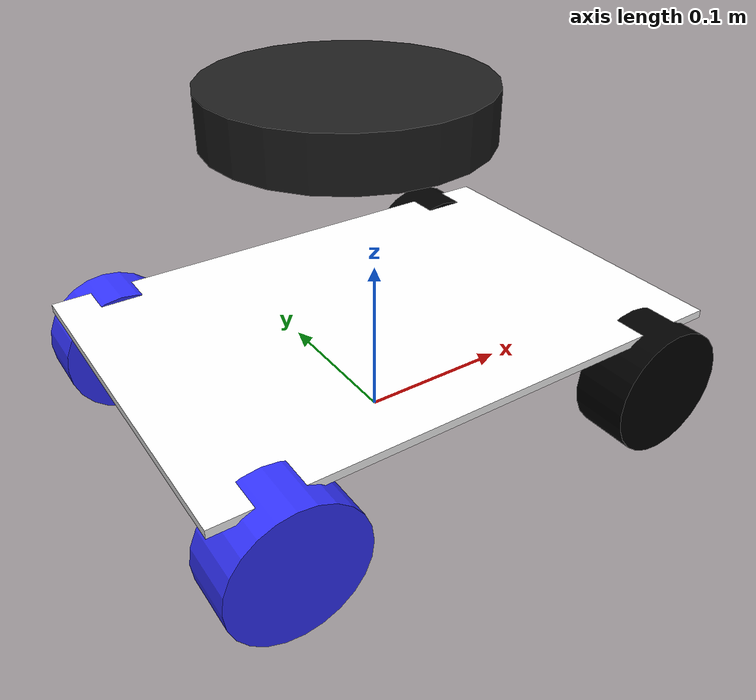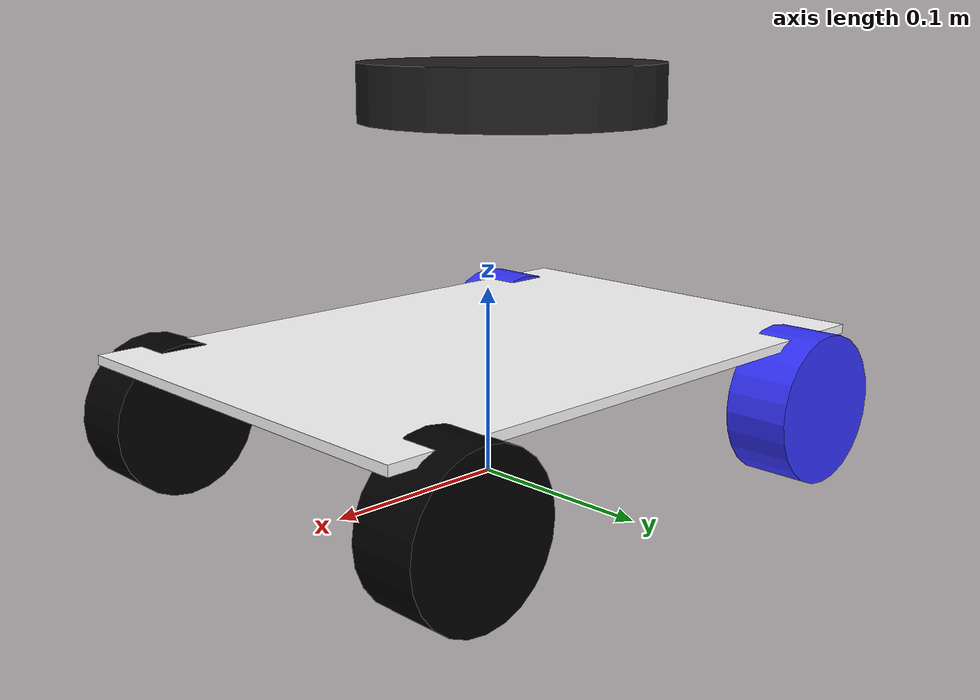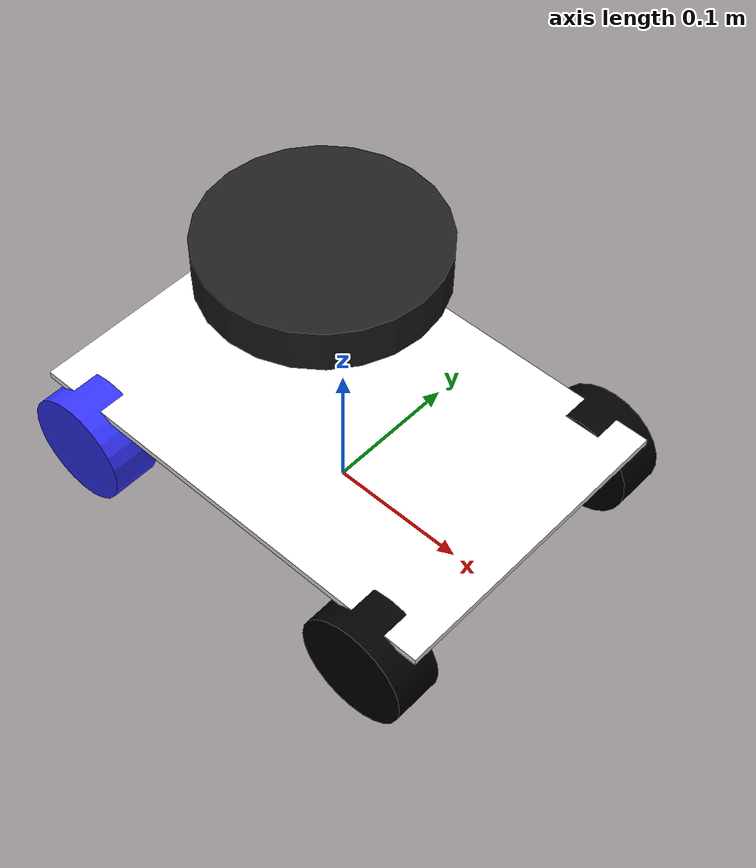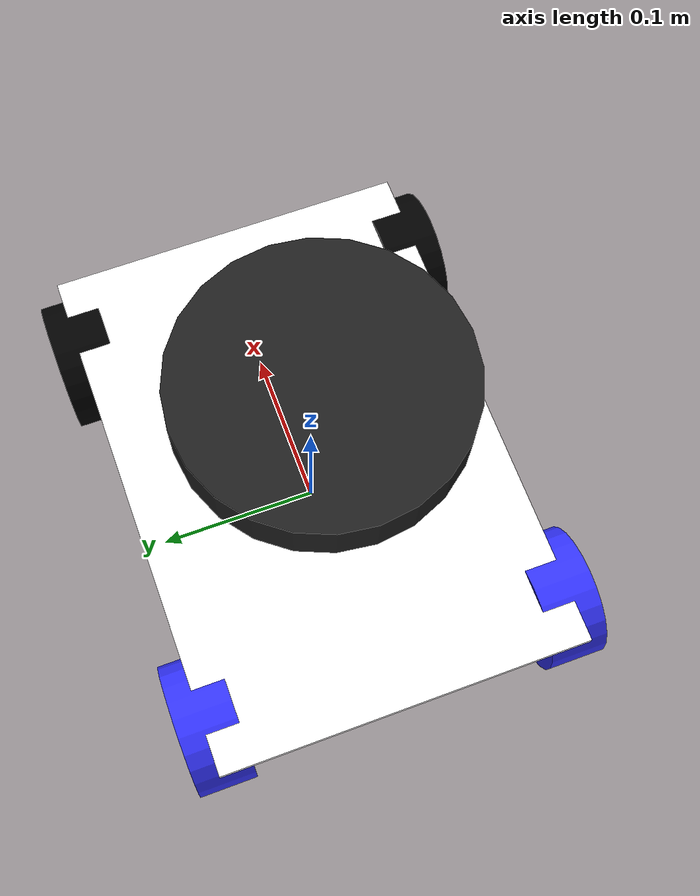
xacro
<?xml version='1.0'?>

<robot name="badger" xmlns:xacro="http://www.ros.org/wiki/xacro">

  <xacro:include filename="inertial_macros.xacro"/>
  <xacro:include filename="badger_robot.gazebo.xacro"/>

    <material name="white">
        <color rgba="1 1 1 1" />
    </material>

    <material name="orange">
        <color rgba="1 0.3 0.1 1"/>
    </material>

    <material name="blue">
        <color rgba="0.2 0.2 1 1"/>
    </material>

    <material name="black">
        <color rgba="0 0 0 1"/>
    </material>

    <material name="red">
        <color rgba="1 0 0 1"/>
    </material>

    <link name="base_footprint"/>

    <joint name="base_joint" type="fixed">
        <parent link="base_footprint"/>
        <child link="base_link"/>
        <origin xyz="0 0 0.035"/>
    </joint>

    <link name="base_link">
        <visual>
          <origin xyz="0 0 0.035"/>
          <geometry>
              <box size="0.325 0.225 0.005"/>
          </geometry>
          <material name="white"/>
        </visual>
        <collision>
          <origin xyz="0.1625 0 0.0025"/>
          <geometry>
              <box size="0.325 0.225 0.005"/>
          </geometry>
        </collision>
        <xacro:inertial_box mass="15" x="0.325" y="0.225" z="0.005">
            <origin xyz="0.1625 0 0.0025" rpy="0 0 0"/>
        </xacro:inertial_box>
    </link>

    <gazebo reference="base_link">
        <material>Gazebo/White</material>
    </gazebo>

    <joint name="bl_wheel_joint" type="continuous">
        <parent link="base_link"/>
        <child link="bl_wheel"/>
        <origin xyz="-0.125 0.11 0" rpy="-${pi/2} 0 0" />
        <axis xyz="0 0 1"/>
    </joint>

    <link name="bl_wheel">
        <visual>
            <geometry>
                <cylinder radius="0.04" length="0.035"/>
            </geometry>
            <material name="blue"/>
        </visual>
        <collision>
            <geometry>
                <cylinder radius="0.04" length="0.035"/>
            </geometry>
        </collision>
        <xacro:inertial_cylinder mass="10" length="0.035" radius="0.04">
            <origin xyz="0 0 0" rpy="0 0 0"/>
        </xacro:inertial_cylinder>
    </link>

    <gazebo reference="bl_wheel">
        <material>Gazebo/Blue</material>
    </gazebo>

    <joint name="br_wheel_joint" type="continuous">
      <parent link="base_link"/>
      <child link="br_wheel"/>
      <origin xyz="-0.125 -0.11 0" rpy="-${pi/2} 0 0" />
      <axis xyz="0 0 1"/>
    </joint>

    <link name="br_wheel">
      <visual>
          <geometry>
              <cylinder radius="0.04" length="0.035"/>
          </geometry>
          <material name="blue"/>
      </visual>
      <collision>
          <geometry>
              <cylinder radius="0.04" length="0.035"/>
          </geometry>
      </collision>
      <xacro:inertial_cylinder mass="10" length="0.035" radius="0.04">
          <origin xyz="0 0 0" rpy="0 0 0"/>
      </xacro:inertial_cylinder>
    </link>

    <gazebo reference="br_wheel">
      <material>Gazebo/Blue</material>
    </gazebo>

    <joint name="fl_wheel_joint" type="fixed">
        <parent link="base_link"/>
        <child link="fl_wheel"/>
        <origin xyz="0.125 0.11 0" rpy="-${pi/2} 0 0" />
        <axis xyz="0 0 1"/>
    </joint>

    <link name="fl_wheel">
        <visual>
            <geometry>
                <cylinder radius="0.04" length="0.035"/>
            </geometry>
            <material name="black"/>
        </visual>
        <collision>
            <geometry>
                <cylinder radius="0.04" length="0.035"/>
            </geometry>
        </collision>
        <xacro:inertial_cylinder mass="10" length="0.035" radius="0.04">
            <origin xyz="0 0 0" rpy="0 0 0"/>
        </xacro:inertial_cylinder>
    </link>

    <gazebo reference="fl_wheel">
        <material>Gazebo/Black</material>
    </gazebo>

    <joint name="fr_wheel_joint" type="fixed">
        <parent link="base_link"/>
        <child link="fr_wheel"/>
        <origin xyz="0.125 -0.11 0" rpy="-${pi/2} 0 0" />
        <axis xyz="0 0 1"/>
    </joint>

    <link name="fr_wheel">
        <visual>
            <geometry>
                <cylinder radius="0.04" length="0.035"/>
            </geometry>
            <material name="black"/>
        </visual>
        <collision>
            <geometry>
                <cylinder radius="0.04" length="0.035"/>
            </geometry>
        </collision>
        <xacro:inertial_cylinder mass="10" length="0.035" radius="0.04">
            <origin xyz="0 0 0" rpy="0 0 0"/>
        </xacro:inertial_cylinder>
    </link>

    <gazebo reference="fr_wheel">
        <material>Gazebo/Black</material>
    </gazebo>

      <joint name="imu_joint" type="fixed">
    <parent link="base_link"/>
    <child link="imu_link"/>
    <origin xyz="-0.032 0 0.068" rpy="0 0 0"/>
  </joint>

  <link name="imu_link"/>

  <joint name="scan_joint" type="fixed">
    <parent link="base_link"/>
    <child link="base_scan"/>
    <origin xyz="-0.032 0 0.172" rpy="0 0 0"/>
  </joint>

  <link name="base_scan">
    <visual>
      <origin xyz="0.015 0 -0.0065" rpy="0 0 0"/>
      <geometry>
        <cylinder length="0.03" radius="0.08"/>
      </geometry>
      <material name="dark"/>
    </visual>

    <collision>
      <origin xyz="0.015 0 -0.0065" rpy="0 0 0"/>
      <geometry>
        <cylinder length="0.03" radius="0.03"/>
      </geometry>
    </collision>

    <inertial>
      <mass value="10" />
      <origin xyz="0 0 0" />
      <inertia ixx="0.001" ixy="0.0" ixz="0.0"
               iyy="0.001" iyz="0.0"
               izz="0.001" />
    </inertial>
  </link>

  <gazebo>
    <plugin name="object_controller" filename="libgazebo_ros_planar_move.so">
      <commandTopic>cmd_vel</commandTopic>
      <odometryTopic>odom</odometryTopic>
      <odometryFrame>odom</odometryFrame>
      <odometryRate>20.0</odometryRate>
      <robotBaseFrame>base_footprint</robotBaseFrame>
    </plugin>
  </gazebo>

</robot>
